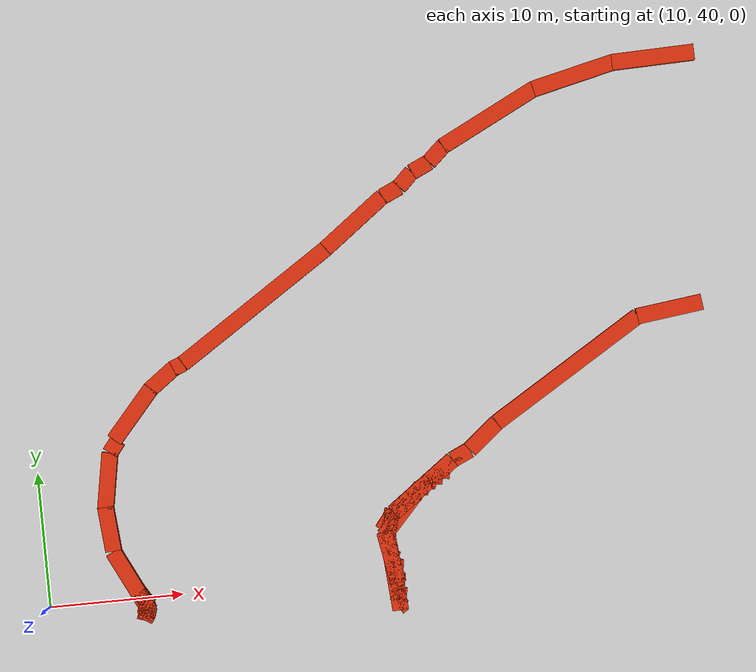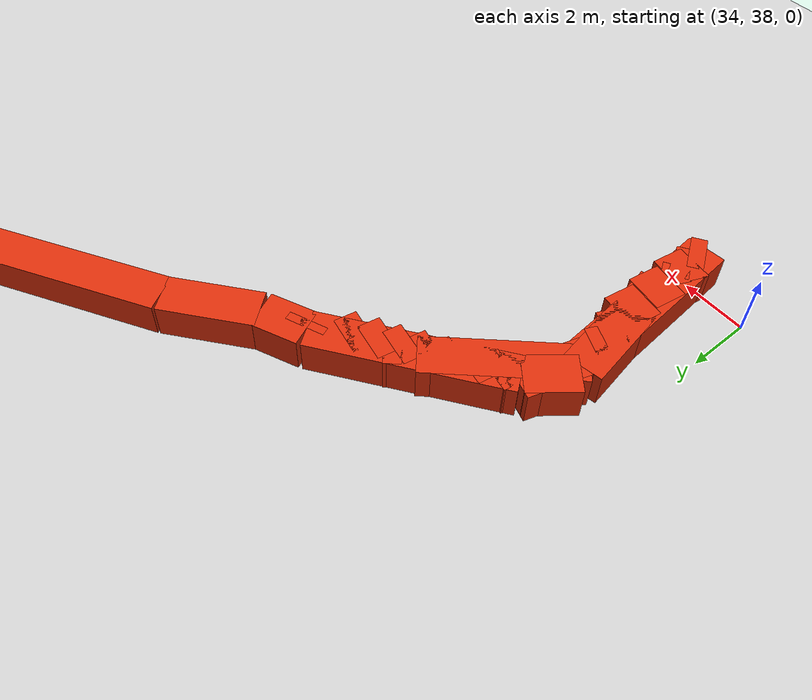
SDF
<sdf version="1.6">
 <world name="default">
  <include><uri>model://ground_plane</uri></include>
  <model name="track_inner_guardrail">
   <static>true</static>
   <link name="seg_120">
    <pose>58.24 57.82 0.55 0 0 -3.0144</pose>
    <collision name="col"><geometry><box><size>4.96 1.20 1.1</size></box></geometry></collision>
    <visual name="vis">
     <geometry><box><size>4.96 1.20 1.1</size></box></geometry>
     <material>
      <ambient>0.35 0.08 0.02 1</ambient>
      <diffuse>0.85 0.18 0.04 1</diffuse>
      <specular>0.2 0.2 0.2 1</specular>
     </material>
    </visual>
   </link>
   <link name="seg_121">
    <pose>50.21 54.05 0.55 0 0 -2.5896</pose>
    <collision name="col"><geometry><box><size>13.21 1.20 1.1</size></box></geometry></collision>
    <visual name="vis">
     <geometry><box><size>13.21 1.20 1.1</size></box></geometry>
     <material>
      <ambient>0.35 0.08 0.02 1</ambient>
      <diffuse>0.85 0.18 0.04 1</diffuse>
      <specular>0.2 0.2 0.2 1</specular>
     </material>
    </visual>
   </link>
   <link name="seg_122">
    <pose>43.48 49.67 0.55 0 0 -2.4505</pose>
    <collision name="col"><geometry><box><size>2.88 1.20 1.1</size></box></geometry></collision>
    <visual name="vis">
     <geometry><box><size>2.88 1.20 1.1</size></box></geometry>
     <material>
      <ambient>0.35 0.08 0.02 1</ambient>
      <diffuse>0.85 0.18 0.04 1</diffuse>
      <specular>0.2 0.2 0.2 1</specular>
     </material>
    </visual>
   </link>
   <link name="seg_123">
    <pose>41.70 48.44 0.55 0 0 -2.7095</pose>
    <collision name="col"><geometry><box><size>1.47 1.20 1.1</size></box></geometry></collision>
    <visual name="vis">
     <geometry><box><size>1.47 1.20 1.1</size></box></geometry>
     <material>
      <ambient>0.35 0.08 0.02 1</ambient>
      <diffuse>0.85 0.18 0.04 1</diffuse>
      <specular>0.2 0.2 0.2 1</specular>
     </material>
    </visual>
   </link>
   <link name="seg_124">
    <pose>38.66 46.38 0.55 0 0 -2.5054</pose>
    <collision name="col"><geometry><box><size>5.90 1.20 1.1</size></box></geometry></collision>
    <visual name="vis">
     <geometry><box><size>5.90 1.20 1.1</size></box></geometry>
     <material>
      <ambient>0.35 0.08 0.02 1</ambient>
      <diffuse>0.85 0.18 0.04 1</diffuse>
      <specular>0.2 0.2 0.2 1</specular>
     </material>
    </visual>
   </link>
   <link name="seg_125">
    <pose>35.80 44.01 0.55 0 0 -2.2374</pose>
    <collision name="col"><geometry><box><size>1.57 1.20 1.1</size></box></geometry></collision>
    <visual name="vis">
     <geometry><box><size>1.57 1.20 1.1</size></box></geometry>
     <material>
      <ambient>0.35 0.08 0.02 1</ambient>
      <diffuse>0.85 0.18 0.04 1</diffuse>
      <specular>0.2 0.2 0.2 1</specular>
     </material>
    </visual>
   </link>
   <link name="seg_126">
    <pose>35.78 41.31 0.55 0 0 -1.3962</pose>
    <collision name="col"><geometry><box><size>3.92 1.20 1.1</size></box></geometry></collision>
    <visual name="vis">
     <geometry><box><size>3.92 1.20 1.1</size></box></geometry>
     <material>
      <ambient>0.35 0.08 0.02 1</ambient>
      <diffuse>0.85 0.18 0.04 1</diffuse>
      <specular>0.2 0.2 0.2 1</specular>
     </material>
    </visual>
   </link>
   <link name="seg_127">
    <pose>36.09 39.13 0.55 0 0 -2.5702</pose>
    <collision name="col"><geometry><box><size>0.36 1.20 1.1</size></box></geometry></collision>
    <visual name="vis">
     <geometry><box><size>0.36 1.20 1.1</size></box></geometry>
     <material>
      <ambient>0.35 0.08 0.02 1</ambient>
      <diffuse>0.85 0.18 0.04 1</diffuse>
      <specular>0.2 0.2 0.2 1</specular>
     </material>
    </visual>
   </link>
   <link name="seg_128">
    <pose>36.19 38.31 0.55 0 0 -2.5702</pose>
    <collision name="col"><geometry><box><size>0.48 1.20 1.1</size></box></geometry></collision>
    <visual name="vis">
     <geometry><box><size>0.48 1.20 1.1</size></box></geometry>
     <material>
      <ambient>0.35 0.08 0.02 1</ambient>
      <diffuse>0.85 0.18 0.04 1</diffuse>
      <specular>0.2 0.2 0.2 1</specular>
     </material>
    </visual>
   </link>
   <link name="seg_129">
    <pose>36.16 37.69 0.55 0 0 -2.5702</pose>
    <collision name="col"><geometry><box><size>0.48 1.20 1.1</size></box></geometry></collision>
    <visual name="vis">
     <geometry><box><size>0.48 1.20 1.1</size></box></geometry>
     <material>
      <ambient>0.35 0.08 0.02 1</ambient>
      <diffuse>0.85 0.18 0.04 1</diffuse>
      <specular>0.2 0.2 0.2 1</specular>
     </material>
    </visual>
   </link>
   <link name="seg_149">
    <pose>36.07 38.52 0.55 0 0 1.4113</pose>
    <collision name="col"><geometry><box><size>1.01 1.20 1.1</size></box></geometry></collision>
    <visual name="vis">
     <geometry><box><size>1.01 1.20 1.1</size></box></geometry>
     <material>
      <ambient>0.35 0.08 0.02 1</ambient>
      <diffuse>0.85 0.18 0.04 1</diffuse>
      <specular>0.2 0.2 0.2 1</specular>
     </material>
    </visual>
   </link>
   <link name="seg_150">
    <pose>36.05 39.58 0.55 0 0 1.4113</pose>
    <collision name="col"><geometry><box><size>1.01 1.20 1.1</size></box></geometry></collision>
    <visual name="vis">
     <geometry><box><size>1.01 1.20 1.1</size></box></geometry>
     <material>
      <ambient>0.35 0.08 0.02 1</ambient>
      <diffuse>0.85 0.18 0.04 1</diffuse>
      <specular>0.2 0.2 0.2 1</specular>
     </material>
    </visual>
   </link>
   <link name="seg_151">
    <pose>36.02 40.64 0.55 0 0 1.4113</pose>
    <collision name="col"><geometry><box><size>1.01 1.20 1.1</size></box></geometry></collision>
    <visual name="vis">
     <geometry><box><size>1.01 1.20 1.1</size></box></geometry>
     <material>
      <ambient>0.35 0.08 0.02 1</ambient>
      <diffuse>0.85 0.18 0.04 1</diffuse>
      <specular>0.2 0.2 0.2 1</specular>
     </material>
    </visual>
   </link>
   <link name="seg_152">
    <pose>35.84 41.63 0.55 0 0 1.1527</pose>
    <collision name="col"><geometry><box><size>0.50 1.20 1.1</size></box></geometry></collision>
    <visual name="vis">
     <geometry><box><size>0.50 1.20 1.1</size></box></geometry>
     <material>
      <ambient>0.35 0.08 0.02 1</ambient>
      <diffuse>0.85 0.18 0.04 1</diffuse>
      <specular>0.2 0.2 0.2 1</specular>
     </material>
    </visual>
   </link>
   <link name="seg_153">
    <pose>35.67 42.35 0.55 0 0 1.1527</pose>
    <collision name="col"><geometry><box><size>0.38 1.20 1.1</size></box></geometry></collision>
    <visual name="vis">
     <geometry><box><size>0.38 1.20 1.1</size></box></geometry>
     <material>
      <ambient>0.35 0.08 0.02 1</ambient>
      <diffuse>0.85 0.18 0.04 1</diffuse>
      <specular>0.2 0.2 0.2 1</specular>
     </material>
    </visual>
   </link>
   <link name="seg_154">
    <pose>35.90 43.79 0.55 0 0 1.2828</pose>
    <collision name="col"><geometry><box><size>2.25 1.20 1.1</size></box></geometry></collision>
    <visual name="vis">
     <geometry><box><size>2.25 1.20 1.1</size></box></geometry>
     <material>
      <ambient>0.35 0.08 0.02 1</ambient>
      <diffuse>0.85 0.18 0.04 1</diffuse>
      <specular>0.2 0.2 0.2 1</specular>
     </material>
    </visual>
   </link>
   <link name="seg_155">
    <pose>36.73 44.96 0.55 0 0 1.3914</pose>
    <collision name="col"><geometry><box><size>0.57 1.20 1.1</size></box></geometry></collision>
    <visual name="vis">
     <geometry><box><size>0.57 1.20 1.1</size></box></geometry>
     <material>
      <ambient>0.35 0.08 0.02 1</ambient>
      <diffuse>0.85 0.18 0.04 1</diffuse>
      <specular>0.2 0.2 0.2 1</specular>
     </material>
    </visual>
   </link>
   <link name="seg_156">
    <pose>37.30 45.33 0.55 0 0 1.3914</pose>
    <collision name="col"><geometry><box><size>0.57 1.20 1.1</size></box></geometry></collision>
    <visual name="vis">
     <geometry><box><size>0.57 1.20 1.1</size></box></geometry>
     <material>
      <ambient>0.35 0.08 0.02 1</ambient>
      <diffuse>0.85 0.18 0.04 1</diffuse>
      <specular>0.2 0.2 0.2 1</specular>
     </material>
    </visual>
   </link>
   <link name="seg_157">
    <pose>37.86 45.70 0.55 0 0 1.3914</pose>
    <collision name="col"><geometry><box><size>0.57 1.20 1.1</size></box></geometry></collision>
    <visual name="vis">
     <geometry><box><size>0.57 1.20 1.1</size></box></geometry>
     <material>
      <ambient>0.35 0.08 0.02 1</ambient>
      <diffuse>0.85 0.18 0.04 1</diffuse>
      <specular>0.2 0.2 0.2 1</specular>
     </material>
    </visual>
   </link>
   <link name="seg_158">
    <pose>38.42 46.07 0.55 0 0 1.3914</pose>
    <collision name="col"><geometry><box><size>0.57 1.20 1.1</size></box></geometry></collision>
    <visual name="vis">
     <geometry><box><size>0.57 1.20 1.1</size></box></geometry>
     <material>
      <ambient>0.35 0.08 0.02 1</ambient>
      <diffuse>0.85 0.18 0.04 1</diffuse>
      <specular>0.2 0.2 0.2 1</specular>
     </material>
    </visual>
   </link>
   <link name="seg_159">
    <pose>38.99 46.45 0.55 0 0 1.3914</pose>
    <collision name="col"><geometry><box><size>0.57 1.20 1.1</size></box></geometry></collision>
    <visual name="vis">
     <geometry><box><size>0.57 1.20 1.1</size></box></geometry>
     <material>
      <ambient>0.35 0.08 0.02 1</ambient>
      <diffuse>0.85 0.18 0.04 1</diffuse>
      <specular>0.2 0.2 0.2 1</specular>
     </material>
    </visual>
   </link>
   <link name="seg_160">
    <pose>39.55 46.82 0.55 0 0 1.3914</pose>
    <collision name="col"><geometry><box><size>0.69 1.20 1.1</size></box></geometry></collision>
    <visual name="vis">
     <geometry><box><size>0.69 1.20 1.1</size></box></geometry>
     <material>
      <ambient>0.35 0.08 0.02 1</ambient>
      <diffuse>0.85 0.18 0.04 1</diffuse>
      <specular>0.2 0.2 0.2 1</specular>
     </material>
    </visual>
   </link>
   <link name="seg_161">
    <pose>40.12 47.19 0.55 0 0 1.3914</pose>
    <collision name="col"><geometry><box><size>0.69 1.20 1.1</size></box></geometry></collision>
    <visual name="vis">
     <geometry><box><size>0.69 1.20 1.1</size></box></geometry>
     <material>
      <ambient>0.35 0.08 0.02 1</ambient>
      <diffuse>0.85 0.18 0.04 1</diffuse>
      <specular>0.2 0.2 0.2 1</specular>
     </material>
    </visual>
   </link>
   <link name="seg_162">
    <pose>41.16 48.05 0.55 0 0 -1.1723</pose>
    <collision name="col"><geometry><box><size>0.26 1.20 1.1</size></box></geometry></collision>
    <visual name="vis">
     <geometry><box><size>0.26 1.20 1.1</size></box></geometry>
     <material>
      <ambient>0.35 0.08 0.02 1</ambient>
      <diffuse>0.85 0.18 0.04 1</diffuse>
      <specular>0.2 0.2 0.2 1</specular>
     </material>
    </visual>
   </link>
   <link name="seg_163">
    <pose>39.11 46.69 0.55 0 0 -2.2826</pose>
    <collision name="col"><geometry><box><size>0.52 1.20 1.1</size></box></geometry></collision>
    <visual name="vis">
     <geometry><box><size>0.52 1.20 1.1</size></box></geometry>
     <material>
      <ambient>0.35 0.08 0.02 1</ambient>
      <diffuse>0.85 0.18 0.04 1</diffuse>
      <specular>0.2 0.2 0.2 1</specular>
     </material>
    </visual>
   </link>
   <link name="seg_164">
    <pose>36.95 44.67 0.55 0 0 -2.3098</pose>
    <collision name="col"><geometry><box><size>4.60 1.20 1.1</size></box></geometry></collision>
    <visual name="vis">
     <geometry><box><size>4.60 1.20 1.1</size></box></geometry>
     <material>
      <ambient>0.35 0.08 0.02 1</ambient>
      <diffuse>0.85 0.18 0.04 1</diffuse>
      <specular>0.2 0.2 0.2 1</specular>
     </material>
    </visual>
   </link>
   <link name="seg_165">
    <pose>35.87 40.21 0.55 0 0 -1.4907</pose>
    <collision name="col"><geometry><box><size>5.76 1.20 1.1</size></box></geometry></collision>
    <visual name="vis">
     <geometry><box><size>5.76 1.20 1.1</size></box></geometry>
     <material>
      <ambient>0.35 0.08 0.02 1</ambient>
      <diffuse>0.85 0.18 0.04 1</diffuse>
      <specular>0.2 0.2 0.2 1</specular>
     </material>
    </visual>
   </link>
  </model>
  <model name="track_outer_guardrail">
   <static>true</static>
   <link name="seg_080">
    <pose>58.78 76.70 0.55 0 0 -3.1099</pose>
    <collision name="col"><geometry><box><size>6.20 1.20 1.1</size></box></geometry></collision>
    <visual name="vis">
     <geometry><box><size>6.20 1.20 1.1</size></box></geometry>
     <material>
      <ambient>0.35 0.08 0.02 1</ambient>
      <diffuse>0.85 0.18 0.04 1</diffuse>
      <specular>0.2 0.2 0.2 1</specular>
     </material>
    </visual>
   </link>
   <link name="seg_081">
    <pose>52.72 75.89 0.55 0 0 -2.9106</pose>
    <collision name="col"><geometry><box><size>6.33 1.20 1.1</size></box></geometry></collision>
    <visual name="vis">
     <geometry><box><size>6.33 1.20 1.1</size></box></geometry>
     <material>
      <ambient>0.35 0.08 0.02 1</ambient>
      <diffuse>0.85 0.18 0.04 1</diffuse>
      <specular>0.2 0.2 0.2 1</specular>
     </material>
    </visual>
   </link>
   <link name="seg_082">
    <pose>46.13 73.38 0.55 0 0 -2.6737</pose>
    <collision name="col"><geometry><box><size>8.11 1.20 1.1</size></box></geometry></collision>
    <visual name="vis">
     <geometry><box><size>8.11 1.20 1.1</size></box></geometry>
     <material>
      <ambient>0.35 0.08 0.02 1</ambient>
      <diffuse>0.85 0.18 0.04 1</diffuse>
      <specular>0.2 0.2 0.2 1</specular>
     </material>
    </visual>
   </link>
   <link name="seg_083">
    <pose>41.97 71.02 0.55 0 0 -2.3937</pose>
    <collision name="col"><geometry><box><size>1.62 1.20 1.1</size></box></geometry></collision>
    <visual name="vis">
     <geometry><box><size>1.62 1.20 1.1</size></box></geometry>
     <material>
      <ambient>0.35 0.08 0.02 1</ambient>
      <diffuse>0.85 0.18 0.04 1</diffuse>
      <specular>0.2 0.2 0.2 1</specular>
     </material>
    </visual>
   </link>
   <link name="seg_084">
    <pose>40.70 70.16 0.55 0 0 -2.7085</pose>
    <collision name="col"><geometry><box><size>1.49 1.20 1.1</size></box></geometry></collision>
    <visual name="vis">
     <geometry><box><size>1.49 1.20 1.1</size></box></geometry>
     <material>
      <ambient>0.35 0.08 0.02 1</ambient>
      <diffuse>0.85 0.18 0.04 1</diffuse>
      <specular>0.2 0.2 0.2 1</specular>
     </material>
    </visual>
   </link>
   <link name="seg_085">
    <pose>39.50 69.34 0.55 0 0 -2.3672</pose>
    <collision name="col"><geometry><box><size>1.46 1.20 1.1</size></box></geometry></collision>
    <visual name="vis">
     <geometry><box><size>1.46 1.20 1.1</size></box></geometry>
     <material>
      <ambient>0.35 0.08 0.02 1</ambient>
      <diffuse>0.85 0.18 0.04 1</diffuse>
      <specular>0.2 0.2 0.2 1</specular>
     </material>
    </visual>
   </link>
   <link name="seg_086">
    <pose>38.31 68.52 0.55 0 0 -2.7111</pose>
    <collision name="col"><geometry><box><size>1.46 1.20 1.1</size></box></geometry></collision>
    <visual name="vis">
     <geometry><box><size>1.46 1.20 1.1</size></box></geometry>
     <material>
      <ambient>0.35 0.08 0.02 1</ambient>
      <diffuse>0.85 0.18 0.04 1</diffuse>
      <specular>0.2 0.2 0.2 1</specular>
     </material>
    </visual>
   </link>
   <link name="seg_087">
    <pose>35.36 66.49 0.55 0 0 -2.4943</pose>
    <collision name="col"><geometry><box><size>5.74 1.20 1.1</size></box></geometry></collision>
    <visual name="vis">
     <geometry><box><size>5.74 1.20 1.1</size></box></geometry>
     <material>
      <ambient>0.35 0.08 0.02 1</ambient>
      <diffuse>0.85 0.18 0.04 1</diffuse>
      <specular>0.2 0.2 0.2 1</specular>
     </material>
    </visual>
   </link>
   <link name="seg_088">
    <pose>27.35 60.98 0.55 0 0 -2.5590</pose>
    <collision name="col"><geometry><box><size>13.70 1.20 1.1</size></box></geometry></collision>
    <visual name="vis">
     <geometry><box><size>13.70 1.20 1.1</size></box></geometry>
     <material>
      <ambient>0.35 0.08 0.02 1</ambient>
      <diffuse>0.85 0.18 0.04 1</diffuse>
      <specular>0.2 0.2 0.2 1</specular>
     </material>
    </visual>
   </link>
   <link name="seg_089">
    <pose>21.26 57.07 0.55 0 0 -2.7643</pose>
    <collision name="col"><geometry><box><size>0.90 1.20 1.1</size></box></geometry></collision>
    <visual name="vis">
     <geometry><box><size>0.90 1.20 1.1</size></box></geometry>
     <material>
      <ambient>0.35 0.08 0.02 1</ambient>
      <diffuse>0.85 0.18 0.04 1</diffuse>
      <specular>0.2 0.2 0.2 1</specular>
     </material>
    </visual>
   </link>
   <link name="seg_090">
    <pose>19.98 56.24 0.55 0 0 -2.5045</pose>
    <collision name="col"><geometry><box><size>2.41 1.20 1.1</size></box></geometry></collision>
    <visual name="vis">
     <geometry><box><size>2.41 1.20 1.1</size></box></geometry>
     <material>
      <ambient>0.35 0.08 0.02 1</ambient>
      <diffuse>0.85 0.18 0.04 1</diffuse>
      <specular>0.2 0.2 0.2 1</specular>
     </material>
    </visual>
   </link>
   <link name="seg_091">
    <pose>17.53 53.80 0.55 0 0 -2.2842</pose>
    <collision name="col"><geometry><box><size>4.72 1.20 1.1</size></box></geometry></collision>
    <visual name="vis">
     <geometry><box><size>4.72 1.20 1.1</size></box></geometry>
     <material>
      <ambient>0.35 0.08 0.02 1</ambient>
      <diffuse>0.85 0.18 0.04 1</diffuse>
      <specular>0.2 0.2 0.2 1</specular>
     </material>
    </visual>
   </link>
   <link name="seg_092">
    <pose>15.90 51.51 0.55 0 0 -2.2309</pose>
    <collision name="col"><geometry><box><size>1.05 1.20 1.1</size></box></geometry></collision>
    <visual name="vis">
     <geometry><box><size>1.05 1.20 1.1</size></box></geometry>
     <material>
      <ambient>0.35 0.08 0.02 1</ambient>
      <diffuse>0.85 0.18 0.04 1</diffuse>
      <specular>0.2 0.2 0.2 1</specular>
     </material>
    </visual>
   </link>
   <link name="seg_093">
    <pose>15.20 49.03 0.55 0 0 -1.7424</pose>
    <collision name="col"><geometry><box><size>4.21 1.20 1.1</size></box></geometry></collision>
    <visual name="vis">
     <geometry><box><size>4.21 1.20 1.1</size></box></geometry>
     <material>
      <ambient>0.35 0.08 0.02 1</ambient>
      <diffuse>0.85 0.18 0.04 1</diffuse>
      <specular>0.2 0.2 0.2 1</specular>
     </material>
    </visual>
   </link>
   <link name="seg_094">
    <pose>14.99 45.41 0.55 0 0 -1.4802</pose>
    <collision name="col"><geometry><box><size>3.34 1.20 1.1</size></box></geometry></collision>
    <visual name="vis">
     <geometry><box><size>3.34 1.20 1.1</size></box></geometry>
     <material>
      <ambient>0.35 0.08 0.02 1</ambient>
      <diffuse>0.85 0.18 0.04 1</diffuse>
      <specular>0.2 0.2 0.2 1</specular>
     </material>
    </visual>
   </link>
   <link name="seg_095">
    <pose>16.23 41.43 0.55 0 0 -1.1106</pose>
    <collision name="col"><geometry><box><size>5.06 1.20 1.1</size></box></geometry></collision>
    <visual name="vis">
     <geometry><box><size>5.06 1.20 1.1</size></box></geometry>
     <material>
      <ambient>0.35 0.08 0.02 1</ambient>
      <diffuse>0.85 0.18 0.04 1</diffuse>
      <specular>0.2 0.2 0.2 1</specular>
     </material>
    </visual>
   </link>
   <link name="seg_096">
    <pose>17.26 38.98 0.55 0 0 -1.8493</pose>
    <collision name="col"><geometry><box><size>0.62 1.20 1.1</size></box></geometry></collision>
    <visual name="vis">
     <geometry><box><size>0.62 1.20 1.1</size></box></geometry>
     <material>
      <ambient>0.35 0.08 0.02 1</ambient>
      <diffuse>0.85 0.18 0.04 1</diffuse>
      <specular>0.2 0.2 0.2 1</specular>
     </material>
    </visual>
   </link>
   <link name="seg_097">
    <pose>17.10 38.59 0.55 0 0 -2.1030</pose>
    <collision name="col"><geometry><box><size>0.47 1.20 1.1</size></box></geometry></collision>
    <visual name="vis">
     <geometry><box><size>0.47 1.20 1.1</size></box></geometry>
     <material>
      <ambient>0.35 0.08 0.02 1</ambient>
      <diffuse>0.85 0.18 0.04 1</diffuse>
      <specular>0.2 0.2 0.2 1</specular>
     </material>
    </visual>
   </link>
   <link name="seg_098">
    <pose>17.18 38.96 0.55 0 0 1.2565</pose>
    <collision name="col"><geometry><box><size>1.22 1.20 1.1</size></box></geometry></collision>
    <visual name="vis">
     <geometry><box><size>1.22 1.20 1.1</size></box></geometry>
     <material>
      <ambient>0.35 0.08 0.02 1</ambient>
      <diffuse>0.85 0.18 0.04 1</diffuse>
      <specular>0.2 0.2 0.2 1</specular>
     </material>
    </visual>
   </link>
   <link name="seg_099">
    <pose>17.04 39.97 0.55 0 0 2.1326</pose>
    <collision name="col"><geometry><box><size>1.27 1.20 1.1</size></box></geometry></collision>
    <visual name="vis">
     <geometry><box><size>1.27 1.20 1.1</size></box></geometry>
     <material>
      <ambient>0.35 0.08 0.02 1</ambient>
      <diffuse>0.85 0.18 0.04 1</diffuse>
      <specular>0.2 0.2 0.2 1</specular>
     </material>
    </visual>
   </link>
   <link name="seg_100">
    <pose>16.98 40.06 0.55 0 0 -1.0174</pose>
    <collision name="col"><geometry><box><size>1.03 1.20 1.1</size></box></geometry></collision>
    <visual name="vis">
     <geometry><box><size>1.03 1.20 1.1</size></box></geometry>
     <material>
      <ambient>0.35 0.08 0.02 1</ambient>
      <diffuse>0.85 0.18 0.04 1</diffuse>
      <specular>0.2 0.2 0.2 1</specular>
     </material>
    </visual>
   </link>
   <link name="seg_101">
    <pose>17.16 39.32 0.55 0 0 -1.7320</pose>
    <collision name="col"><geometry><box><size>0.84 1.20 1.1</size></box></geometry></collision>
    <visual name="vis">
     <geometry><box><size>0.84 1.20 1.1</size></box></geometry>
     <material>
      <ambient>0.35 0.08 0.02 1</ambient>
      <diffuse>0.85 0.18 0.04 1</diffuse>
      <specular>0.2 0.2 0.2 1</specular>
     </material>
    </visual>
   </link>
  </model>
 </world>
</sdf>
